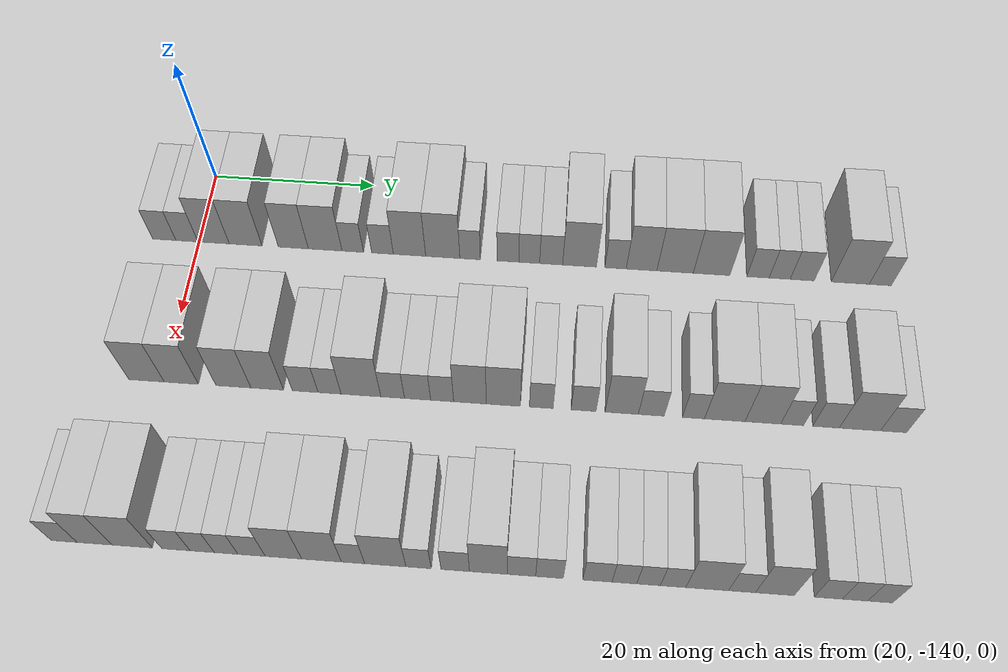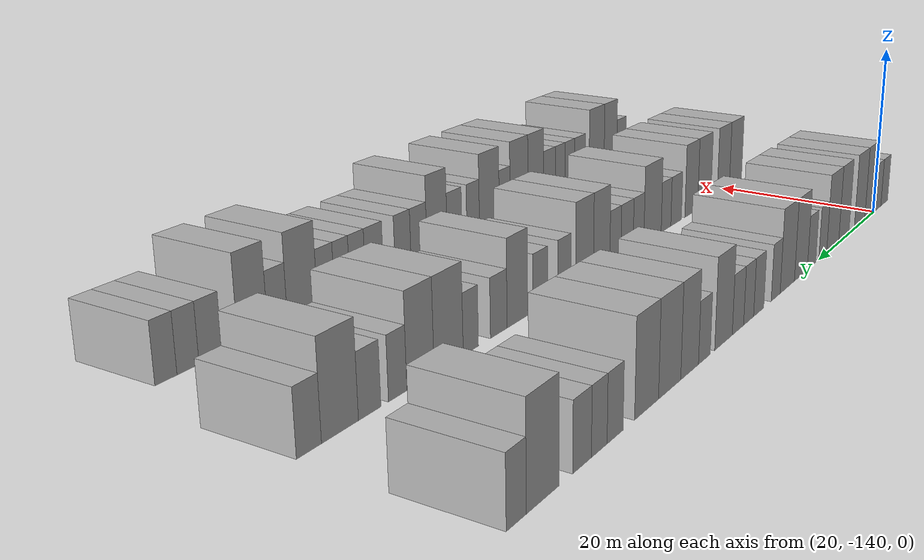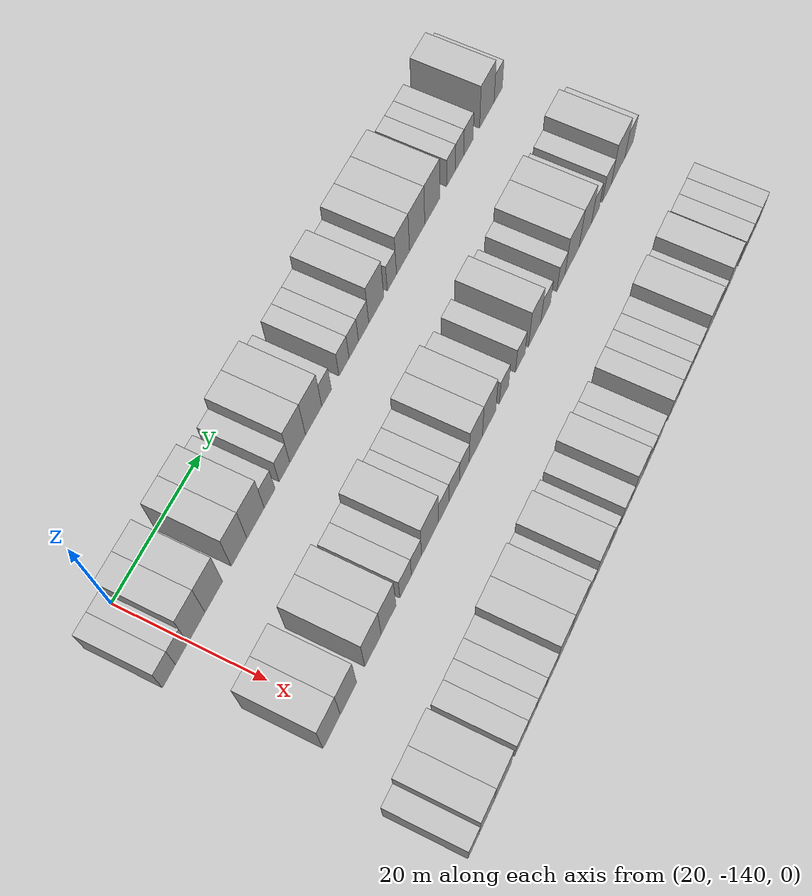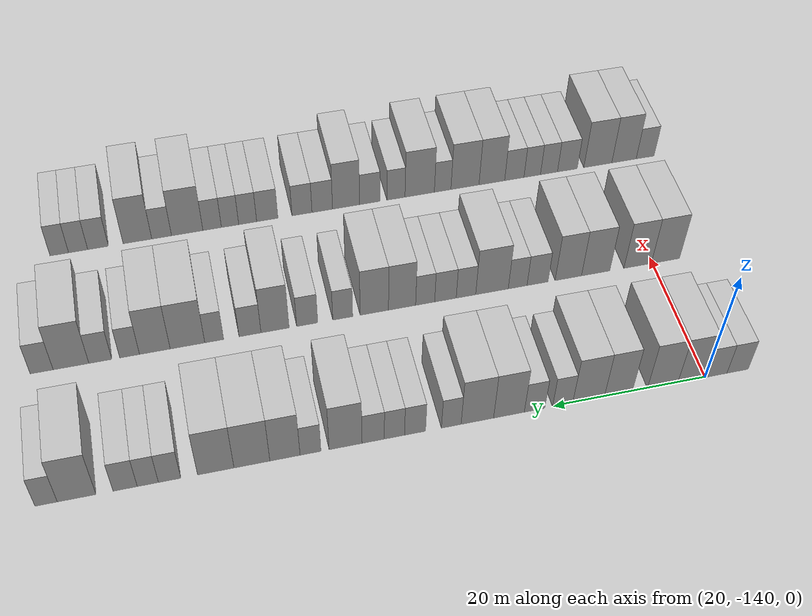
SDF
<sdf version="1.6">
 <world name="default">
  <model name="building_27">
   <static>1</static>
   <pose>25.0000 -144.2960 0 0.000000 0.000000 0.000000</pose>
   <link name="link">
    <pose>0 0 3.00 0 0 0</pose>
    <collision name="collision"><geometry><box><size>10.0000 2.8612 6.0000</size></box></geometry></collision>
    <visual name="visual">
     <cast_shadows>0</cast_shadows>
     <geometry><box><size>10.0000 2.8612 6.0000</size></box></geometry>
     <material>
      <script>
       <uri>model://HANNAS_wall/materials/scripts</uri>
       <uri>model://HANNAS_wall/materials/textures</uri>
       <name>vrc/HANNAS_wall</name>
      </script>
     </material>
    </visual>
   </link>
  </model>
  <model name="building_28">
   <static>1</static>
   <pose>25.0000 -141.5084 0 0.000000 0.000000 0.000000</pose>
   <link name="link">
    <pose>0 0 3.00 0 0 0</pose>
    <collision name="collision"><geometry><box><size>10.0000 2.7138 6.0000</size></box></geometry></collision>
    <visual name="visual">
     <cast_shadows>0</cast_shadows>
     <geometry><box><size>10.0000 2.7138 6.0000</size></box></geometry>
     <material>
      <script>
       <uri>model://HANNAS_wall/materials/scripts</uri>
       <uri>model://HANNAS_wall/materials/textures</uri>
       <name>vrc/HANNAS_wall</name>
      </script>
     </material>
    </visual>
   </link>
  </model>
  <model name="building_29">
   <static>1</static>
   <pose>25.0000 -138.2250 0 0.000000 0.000000 0.000000</pose>
   <link name="link">
    <pose>0 0 4.50 0 0 0</pose>
    <collision name="collision"><geometry><box><size>10.0000 3.8531 9.0000</size></box></geometry></collision>
    <visual name="visual">
     <cast_shadows>0</cast_shadows>
     <geometry><box><size>10.0000 3.8531 9.0000</size></box></geometry>
     <material>
      <script>
       <uri>model://HANNAS_wall/materials/scripts</uri>
       <uri>model://HANNAS_wall/materials/textures</uri>
       <name>vrc/HANNAS_wall</name>
      </script>
     </material>
    </visual>
   </link>
  </model>
  <model name="building_30">
   <static>1</static>
   <pose>25.0000 -134.2872 0 0.000000 0.000000 0.000000</pose>
   <link name="link">
    <pose>0 0 4.50 0 0 0</pose>
    <collision name="collision"><geometry><box><size>10.0000 4.0226 9.0000</size></box></geometry></collision>
    <visual name="visual">
     <cast_shadows>0</cast_shadows>
     <geometry><box><size>10.0000 4.0226 9.0000</size></box></geometry>
     <material>
      <script>
       <uri>model://HANNAS_wall/materials/scripts</uri>
       <uri>model://HANNAS_wall/materials/textures</uri>
       <name>vrc/HANNAS_wall</name>
      </script>
     </material>
    </visual>
   </link>
  </model>
  <model name="building_31">
   <static>1</static>
   <pose>25.0000 -128.4389 0 0.000000 0.000000 0.000000</pose>
   <link name="link">
    <pose>0 0 4.50 0 0 0</pose>
    <collision name="collision"><geometry><box><size>10.0000 3.6739 9.0000</size></box></geometry></collision>
    <visual name="visual">
     <cast_shadows>0</cast_shadows>
     <geometry><box><size>10.0000 3.6739 9.0000</size></box></geometry>
     <material>
      <script>
       <uri>model://HANNAS_wall/materials/scripts</uri>
       <uri>model://HANNAS_wall/materials/textures</uri>
       <name>vrc/HANNAS_wall</name>
      </script>
     </material>
    </visual>
   </link>
  </model>
  <model name="building_32">
   <static>1</static>
   <pose>25.0000 -124.5417 0 0.000000 0.000000 0.000000</pose>
   <link name="link">
    <pose>0 0 4.50 0 0 0</pose>
    <collision name="collision"><geometry><box><size>10.0000 4.1206 9.0000</size></box></geometry></collision>
    <visual name="visual">
     <cast_shadows>0</cast_shadows>
     <geometry><box><size>10.0000 4.1206 9.0000</size></box></geometry>
     <material>
      <script>
       <uri>model://HANNAS_wall/materials/scripts</uri>
       <uri>model://HANNAS_wall/materials/textures</uri>
       <name>vrc/HANNAS_wall</name>
      </script>
     </material>
    </visual>
   </link>
  </model>
  <model name="building_33">
   <static>1</static>
   <pose>25.0000 -121.1774 0 0.000000 0.000000 0.000000</pose>
   <link name="link">
    <pose>0 0 3.00 0 0 0</pose>
    <collision name="collision"><geometry><box><size>10.0000 2.6078 6.0000</size></box></geometry></collision>
    <visual name="visual">
     <cast_shadows>0</cast_shadows>
     <geometry><box><size>10.0000 2.6078 6.0000</size></box></geometry>
     <material>
      <script>
       <uri>model://HANNAS_wall/materials/scripts</uri>
       <uri>model://HANNAS_wall/materials/textures</uri>
       <name>vrc/HANNAS_wall</name>
      </script>
     </material>
    </visual>
   </link>
  </model>
  <model name="building_34">
   <static>1</static>
   <pose>25.0000 -117.5598 0 0.000000 0.000000 0.000000</pose>
   <link name="link">
    <pose>0 0 3.00 0 0 0</pose>
    <collision name="collision"><geometry><box><size>10.0000 2.6275 6.0000</size></box></geometry></collision>
    <visual name="visual">
     <cast_shadows>0</cast_shadows>
     <geometry><box><size>10.0000 2.6275 6.0000</size></box></geometry>
     <material>
      <script>
       <uri>model://HANNAS_wall/materials/scripts</uri>
       <uri>model://HANNAS_wall/materials/textures</uri>
       <name>vrc/HANNAS_wall</name>
      </script>
     </material>
    </visual>
   </link>
  </model>
  <model name="building_35">
   <static>1</static>
   <pose>25.0000 -114.2830 0 0.000000 0.000000 0.000000</pose>
   <link name="link">
    <pose>0 0 4.50 0 0 0</pose>
    <collision name="collision"><geometry><box><size>10.0000 3.9260 9.0000</size></box></geometry></collision>
    <visual name="visual">
     <cast_shadows>0</cast_shadows>
     <geometry><box><size>10.0000 3.9260 9.0000</size></box></geometry>
     <material>
      <script>
       <uri>model://HANNAS_wall/materials/scripts</uri>
       <uri>model://HANNAS_wall/materials/textures</uri>
       <name>vrc/HANNAS_wall</name>
      </script>
     </material>
    </visual>
   </link>
  </model>
  <model name="building_36">
   <static>1</static>
   <pose>25.0000 -110.2550 0 0.000000 0.000000 0.000000</pose>
   <link name="link">
    <pose>0 0 4.50 0 0 0</pose>
    <collision name="collision"><geometry><box><size>10.0000 4.1302 9.0000</size></box></geometry></collision>
    <visual name="visual">
     <cast_shadows>0</cast_shadows>
     <geometry><box><size>10.0000 4.1302 9.0000</size></box></geometry>
     <material>
      <script>
       <uri>model://HANNAS_wall/materials/scripts</uri>
       <uri>model://HANNAS_wall/materials/textures</uri>
       <name>vrc/HANNAS_wall</name>
      </script>
     </material>
    </visual>
   </link>
  </model>
  <model name="building_37">
   <static>1</static>
   <pose>25.0000 -106.9513 0 0.000000 0.000000 0.000000</pose>
   <link name="link">
    <pose>0 0 3.00 0 0 0</pose>
    <collision name="collision"><geometry><box><size>10.0000 2.4772 6.0000</size></box></geometry></collision>
    <visual name="visual">
     <cast_shadows>0</cast_shadows>
     <geometry><box><size>10.0000 2.4772 6.0000</size></box></geometry>
     <material>
      <script>
       <uri>model://HANNAS_wall/materials/scripts</uri>
       <uri>model://HANNAS_wall/materials/textures</uri>
       <name>vrc/HANNAS_wall</name>
      </script>
     </material>
    </visual>
   </link>
  </model>
  <model name="building_38">
   <static>1</static>
   <pose>25.0000 -102.3991 0 0.000000 0.000000 0.000000</pose>
   <link name="link">
    <pose>0 0 3.00 0 0 0</pose>
    <collision name="collision"><geometry><box><size>10.0000 2.6270 6.0000</size></box></geometry></collision>
    <visual name="visual">
     <cast_shadows>0</cast_shadows>
     <geometry><box><size>10.0000 2.6270 6.0000</size></box></geometry>
     <material>
      <script>
       <uri>model://HANNAS_wall/materials/scripts</uri>
       <uri>model://HANNAS_wall/materials/textures</uri>
       <name>vrc/HANNAS_wall</name>
      </script>
     </material>
    </visual>
   </link>
  </model>
  <model name="building_39">
   <static>1</static>
   <pose>25.0000 -99.8276 0 0.000000 0.000000 0.000000</pose>
   <link name="link">
    <pose>0 0 3.00 0 0 0</pose>
    <collision name="collision"><geometry><box><size>10.0000 2.5159 6.0000</size></box></geometry></collision>
    <visual name="visual">
     <cast_shadows>0</cast_shadows>
     <geometry><box><size>10.0000 2.5159 6.0000</size></box></geometry>
     <material>
      <script>
       <uri>model://HANNAS_wall/materials/scripts</uri>
       <uri>model://HANNAS_wall/materials/textures</uri>
       <name>vrc/HANNAS_wall</name>
      </script>
     </material>
    </visual>
   </link>
  </model>
  <model name="building_40">
   <static>1</static>
   <pose>25.0000 -97.1902 0 0.000000 0.000000 0.000000</pose>
   <link name="link">
    <pose>0 0 3.00 0 0 0</pose>
    <collision name="collision"><geometry><box><size>10.0000 2.7589 6.0000</size></box></geometry></collision>
    <visual name="visual">
     <cast_shadows>0</cast_shadows>
     <geometry><box><size>10.0000 2.7589 6.0000</size></box></geometry>
     <material>
      <script>
       <uri>model://HANNAS_wall/materials/scripts</uri>
       <uri>model://HANNAS_wall/materials/textures</uri>
       <name>vrc/HANNAS_wall</name>
      </script>
     </material>
    </visual>
   </link>
  </model>
  <model name="building_41">
   <static>1</static>
   <pose>25.0000 -93.7795 0 0.000000 0.000000 0.000000</pose>
   <link name="link">
    <pose>0 0 4.50 0 0 0</pose>
    <collision name="collision"><geometry><box><size>10.0000 4.0625 9.0000</size></box></geometry></collision>
    <visual name="visual">
     <cast_shadows>0</cast_shadows>
     <geometry><box><size>10.0000 4.0625 9.0000</size></box></geometry>
     <material>
      <script>
       <uri>model://HANNAS_wall/materials/scripts</uri>
       <uri>model://HANNAS_wall/materials/textures</uri>
       <name>vrc/HANNAS_wall</name>
      </script>
     </material>
    </visual>
   </link>
  </model>
  <model name="building_42">
   <static>1</static>
   <pose>25.0000 -89.4730 0 0.000000 0.000000 0.000000</pose>
   <link name="link">
    <pose>0 0 3.00 0 0 0</pose>
    <collision name="collision"><geometry><box><size>10.0000 2.5506 6.0000</size></box></geometry></collision>
    <visual name="visual">
     <cast_shadows>0</cast_shadows>
     <geometry><box><size>10.0000 2.5506 6.0000</size></box></geometry>
     <material>
      <script>
       <uri>model://HANNAS_wall/materials/scripts</uri>
       <uri>model://HANNAS_wall/materials/textures</uri>
       <name>vrc/HANNAS_wall</name>
      </script>
     </material>
    </visual>
   </link>
  </model>
  <model name="building_43">
   <static>1</static>
   <pose>25.0000 -86.3629 0 0.000000 0.000000 0.000000</pose>
   <link name="link">
    <pose>0 0 4.50 0 0 0</pose>
    <collision name="collision"><geometry><box><size>10.0000 3.6694 9.0000</size></box></geometry></collision>
    <visual name="visual">
     <cast_shadows>0</cast_shadows>
     <geometry><box><size>10.0000 3.6694 9.0000</size></box></geometry>
     <material>
      <script>
       <uri>model://HANNAS_wall/materials/scripts</uri>
       <uri>model://HANNAS_wall/materials/textures</uri>
       <name>vrc/HANNAS_wall</name>
      </script>
     </material>
    </visual>
   </link>
  </model>
  <model name="building_44">
   <static>1</static>
   <pose>25.0000 -82.3609 0 0.000000 0.000000 0.000000</pose>
   <link name="link">
    <pose>0 0 4.50 0 0 0</pose>
    <collision name="collision"><geometry><box><size>10.0000 4.3346 9.0000</size></box></geometry></collision>
    <visual name="visual">
     <cast_shadows>0</cast_shadows>
     <geometry><box><size>10.0000 4.3346 9.0000</size></box></geometry>
     <material>
      <script>
       <uri>model://HANNAS_wall/materials/scripts</uri>
       <uri>model://HANNAS_wall/materials/textures</uri>
       <name>vrc/HANNAS_wall</name>
      </script>
     </material>
    </visual>
   </link>
  </model>
  <model name="building_45">
   <static>1</static>
   <pose>25.0000 -78.0160 0 0.000000 0.000000 0.000000</pose>
   <link name="link">
    <pose>0 0 4.50 0 0 0</pose>
    <collision name="collision"><geometry><box><size>10.0000 4.3552 9.0000</size></box></geometry></collision>
    <visual name="visual">
     <cast_shadows>0</cast_shadows>
     <geometry><box><size>10.0000 4.3552 9.0000</size></box></geometry>
     <material>
      <script>
       <uri>model://HANNAS_wall/materials/scripts</uri>
       <uri>model://HANNAS_wall/materials/textures</uri>
       <name>vrc/HANNAS_wall</name>
      </script>
     </material>
    </visual>
   </link>
  </model>
  <model name="building_46">
   <static>1</static>
   <pose>25.0000 -72.5112 0 0.000000 0.000000 0.000000</pose>
   <link name="link">
    <pose>0 0 3.00 0 0 0</pose>
    <collision name="collision"><geometry><box><size>10.0000 2.6545 6.0000</size></box></geometry></collision>
    <visual name="visual">
     <cast_shadows>0</cast_shadows>
     <geometry><box><size>10.0000 2.6545 6.0000</size></box></geometry>
     <material>
      <script>
       <uri>model://HANNAS_wall/materials/scripts</uri>
       <uri>model://HANNAS_wall/materials/textures</uri>
       <name>vrc/HANNAS_wall</name>
      </script>
     </material>
    </visual>
   </link>
  </model>
  <model name="building_47">
   <static>1</static>
   <pose>25.0000 -69.9374 0 0.000000 0.000000 0.000000</pose>
   <link name="link">
    <pose>0 0 3.00 0 0 0</pose>
    <collision name="collision"><geometry><box><size>10.0000 2.4931 6.0000</size></box></geometry></collision>
    <visual name="visual">
     <cast_shadows>0</cast_shadows>
     <geometry><box><size>10.0000 2.4931 6.0000</size></box></geometry>
     <material>
      <script>
       <uri>model://HANNAS_wall/materials/scripts</uri>
       <uri>model://HANNAS_wall/materials/textures</uri>
       <name>vrc/HANNAS_wall</name>
      </script>
     </material>
    </visual>
   </link>
  </model>
  <model name="building_48">
   <static>1</static>
   <pose>25.0000 -67.2737 0 0.000000 0.000000 0.000000</pose>
   <link name="link">
    <pose>0 0 3.00 0 0 0</pose>
    <collision name="collision"><geometry><box><size>10.0000 2.8341 6.0000</size></box></geometry></collision>
    <visual name="visual">
     <cast_shadows>0</cast_shadows>
     <geometry><box><size>10.0000 2.8341 6.0000</size></box></geometry>
     <material>
      <script>
       <uri>model://HANNAS_wall/materials/scripts</uri>
       <uri>model://HANNAS_wall/materials/textures</uri>
       <name>vrc/HANNAS_wall</name>
      </script>
     </material>
    </visual>
   </link>
  </model>
  <model name="building_49">
   <static>1</static>
   <pose>25.0000 -61.6095 0 0.000000 0.000000 0.000000</pose>
   <link name="link">
    <pose>0 0 4.50 0 0 0</pose>
    <collision name="collision"><geometry><box><size>10.0000 4.4944 9.0000</size></box></geometry></collision>
    <visual name="visual">
     <cast_shadows>0</cast_shadows>
     <geometry><box><size>10.0000 4.4944 9.0000</size></box></geometry>
     <material>
      <script>
       <uri>model://HANNAS_wall/materials/scripts</uri>
       <uri>model://HANNAS_wall/materials/textures</uri>
       <name>vrc/HANNAS_wall</name>
      </script>
     </material>
    </visual>
   </link>
  </model>
  <model name="building_50">
   <static>1</static>
   <pose>25.0000 -58.0694 0 0.000000 0.000000 0.000000</pose>
   <link name="link">
    <pose>0 0 3.00 0 0 0</pose>
    <collision name="collision"><geometry><box><size>10.0000 2.5858 6.0000</size></box></geometry></collision>
    <visual name="visual">
     <cast_shadows>0</cast_shadows>
     <geometry><box><size>10.0000 2.5858 6.0000</size></box></geometry>
     <material>
      <script>
       <uri>model://HANNAS_wall/materials/scripts</uri>
       <uri>model://HANNAS_wall/materials/textures</uri>
       <name>vrc/HANNAS_wall</name>
      </script>
     </material>
    </visual>
   </link>
  </model>
  <model name="building_145">
   <static>1</static>
   <pose>44.0000 -141.8505 0 0.000000 0.000000 0.000000</pose>
   <link name="link">
    <pose>0 0 4.50 0 0 0</pose>
    <collision name="collision"><geometry><box><size>10.0000 4.0419 9.0000</size></box></geometry></collision>
    <visual name="visual">
     <cast_shadows>0</cast_shadows>
     <geometry><box><size>10.0000 4.0419 9.0000</size></box></geometry>
     <material>
      <script>
       <uri>model://HANNAS_wall/materials/scripts</uri>
       <uri>model://HANNAS_wall/materials/textures</uri>
       <name>vrc/HANNAS_wall</name>
      </script>
     </material>
    </visual>
   </link>
  </model>
  <model name="building_146">
   <static>1</static>
   <pose>44.0000 -137.8830 0 0.000000 0.000000 0.000000</pose>
   <link name="link">
    <pose>0 0 4.50 0 0 0</pose>
    <collision name="collision"><geometry><box><size>10.0000 3.8932 9.0000</size></box></geometry></collision>
    <visual name="visual">
     <cast_shadows>0</cast_shadows>
     <geometry><box><size>10.0000 3.8932 9.0000</size></box></geometry>
     <material>
      <script>
       <uri>model://HANNAS_wall/materials/scripts</uri>
       <uri>model://HANNAS_wall/materials/textures</uri>
       <name>vrc/HANNAS_wall</name>
      </script>
     </material>
    </visual>
   </link>
  </model>
  <model name="building_147">
   <static>1</static>
   <pose>44.0000 -131.9435 0 0.000000 0.000000 0.000000</pose>
   <link name="link">
    <pose>0 0 4.50 0 0 0</pose>
    <collision name="collision"><geometry><box><size>10.0000 3.9858 9.0000</size></box></geometry></collision>
    <visual name="visual">
     <cast_shadows>0</cast_shadows>
     <geometry><box><size>10.0000 3.9858 9.0000</size></box></geometry>
     <material>
      <script>
       <uri>model://HANNAS_wall/materials/scripts</uri>
       <uri>model://HANNAS_wall/materials/textures</uri>
       <name>vrc/HANNAS_wall</name>
      </script>
     </material>
    </visual>
   </link>
  </model>
  <model name="building_148">
   <static>1</static>
   <pose>44.0000 -128.1003 0 0.000000 0.000000 0.000000</pose>
   <link name="link">
    <pose>0 0 4.50 0 0 0</pose>
    <collision name="collision"><geometry><box><size>10.0000 3.7007 9.0000</size></box></geometry></collision>
    <visual name="visual">
     <cast_shadows>0</cast_shadows>
     <geometry><box><size>10.0000 3.7007 9.0000</size></box></geometry>
     <material>
      <script>
       <uri>model://HANNAS_wall/materials/scripts</uri>
       <uri>model://HANNAS_wall/materials/textures</uri>
       <name>vrc/HANNAS_wall</name>
      </script>
     </material>
    </visual>
   </link>
  </model>
  <model name="building_149">
   <static>1</static>
   <pose>44.0000 -123.7955 0 0.000000 0.000000 0.000000</pose>
   <link name="link">
    <pose>0 0 3.00 0 0 0</pose>
    <collision name="collision"><geometry><box><size>10.0000 2.9089 6.0000</size></box></geometry></collision>
    <visual name="visual">
     <cast_shadows>0</cast_shadows>
     <geometry><box><size>10.0000 2.9089 6.0000</size></box></geometry>
     <material>
      <script>
       <uri>model://HANNAS_wall/materials/scripts</uri>
       <uri>model://HANNAS_wall/materials/textures</uri>
       <name>vrc/HANNAS_wall</name>
      </script>
     </material>
    </visual>
   </link>
  </model>
  <model name="building_150">
   <static>1</static>
   <pose>44.0000 -121.0415 0 0.000000 0.000000 0.000000</pose>
   <link name="link">
    <pose>0 0 3.00 0 0 0</pose>
    <collision name="collision"><geometry><box><size>10.0000 2.5991 6.0000</size></box></geometry></collision>
    <visual name="visual">
     <cast_shadows>0</cast_shadows>
     <geometry><box><size>10.0000 2.5991 6.0000</size></box></geometry>
     <material>
      <script>
       <uri>model://HANNAS_wall/materials/scripts</uri>
       <uri>model://HANNAS_wall/materials/textures</uri>
       <name>vrc/HANNAS_wall</name>
      </script>
     </material>
    </visual>
   </link>
  </model>
  <model name="building_151">
   <static>1</static>
   <pose>44.0000 -117.4998 0 0.000000 0.000000 0.000000</pose>
   <link name="link">
    <pose>0 0 4.50 0 0 0</pose>
    <collision name="collision"><geometry><box><size>10.0000 4.4843 9.0000</size></box></geometry></collision>
    <visual name="visual">
     <cast_shadows>0</cast_shadows>
     <geometry><box><size>10.0000 4.4843 9.0000</size></box></geometry>
     <material>
      <script>
       <uri>model://HANNAS_wall/materials/scripts</uri>
       <uri>model://HANNAS_wall/materials/textures</uri>
       <name>vrc/HANNAS_wall</name>
      </script>
     </material>
    </visual>
   </link>
  </model>
  <model name="building_152">
   <static>1</static>
   <pose>44.0000 -113.9255 0 0.000000 0.000000 0.000000</pose>
   <link name="link">
    <pose>0 0 3.00 0 0 0</pose>
    <collision name="collision"><geometry><box><size>10.0000 2.6643 6.0000</size></box></geometry></collision>
    <visual name="visual">
     <cast_shadows>0</cast_shadows>
     <geometry><box><size>10.0000 2.6643 6.0000</size></box></geometry>
     <material>
      <script>
       <uri>model://HANNAS_wall/materials/scripts</uri>
       <uri>model://HANNAS_wall/materials/textures</uri>
       <name>vrc/HANNAS_wall</name>
      </script>
     </material>
    </visual>
   </link>
  </model>
  <model name="building_153">
   <static>1</static>
   <pose>44.0000 -111.1260 0 0.000000 0.000000 0.000000</pose>
   <link name="link">
    <pose>0 0 3.00 0 0 0</pose>
    <collision name="collision"><geometry><box><size>10.0000 2.9346 6.0000</size></box></geometry></collision>
    <visual name="visual">
     <cast_shadows>0</cast_shadows>
     <geometry><box><size>10.0000 2.9346 6.0000</size></box></geometry>
     <material>
      <script>
       <uri>model://HANNAS_wall/materials/scripts</uri>
       <uri>model://HANNAS_wall/materials/textures</uri>
       <name>vrc/HANNAS_wall</name>
      </script>
     </material>
    </visual>
   </link>
  </model>
  <model name="building_154">
   <static>1</static>
   <pose>44.0000 -108.3682 0 0.000000 0.000000 0.000000</pose>
   <link name="link">
    <pose>0 0 3.00 0 0 0</pose>
    <collision name="collision"><geometry><box><size>10.0000 2.5810 6.0000</size></box></geometry></collision>
    <visual name="visual">
     <cast_shadows>0</cast_shadows>
     <geometry><box><size>10.0000 2.5810 6.0000</size></box></geometry>
     <material>
      <script>
       <uri>model://HANNAS_wall/materials/scripts</uri>
       <uri>model://HANNAS_wall/materials/textures</uri>
       <name>vrc/HANNAS_wall</name>
      </script>
     </material>
    </visual>
   </link>
  </model>
  <model name="building_155">
   <static>1</static>
   <pose>44.0000 -105.2479 0 0.000000 0.000000 0.000000</pose>
   <link name="link">
    <pose>0 0 4.50 0 0 0</pose>
    <collision name="collision"><geometry><box><size>10.0000 3.6594 9.0000</size></box></geometry></collision>
    <visual name="visual">
     <cast_shadows>0</cast_shadows>
     <geometry><box><size>10.0000 3.6594 9.0000</size></box></geometry>
     <material>
      <script>
       <uri>model://HANNAS_wall/materials/scripts</uri>
       <uri>model://HANNAS_wall/materials/textures</uri>
       <name>vrc/HANNAS_wall</name>
      </script>
     </material>
    </visual>
   </link>
  </model>
  <model name="building_156">
   <static>1</static>
   <pose>44.0000 -101.5201 0 0.000000 0.000000 0.000000</pose>
   <link name="link">
    <pose>0 0 4.50 0 0 0</pose>
    <collision name="collision"><geometry><box><size>10.0000 3.7964 9.0000</size></box></geometry></collision>
    <visual name="visual">
     <cast_shadows>0</cast_shadows>
     <geometry><box><size>10.0000 3.7964 9.0000</size></box></geometry>
     <material>
      <script>
       <uri>model://HANNAS_wall/materials/scripts</uri>
       <uri>model://HANNAS_wall/materials/textures</uri>
       <name>vrc/HANNAS_wall</name>
      </script>
     </material>
    </visual>
   </link>
  </model>
  <model name="building_157">
   <static>1</static>
   <pose>44.0000 -97.3003 0 0.000000 0.000000 0.000000</pose>
   <link name="link">
    <pose>0 0 3.00 0 0 0</pose>
    <collision name="collision"><geometry><box><size>10.0000 2.6431 6.0000</size></box></geometry></collision>
    <visual name="visual">
     <cast_shadows>0</cast_shadows>
     <geometry><box><size>10.0000 2.6431 6.0000</size></box></geometry>
     <material>
      <script>
       <uri>model://HANNAS_wall/materials/scripts</uri>
       <uri>model://HANNAS_wall/materials/textures</uri>
       <name>vrc/HANNAS_wall</name>
      </script>
     </material>
    </visual>
   </link>
  </model>
  <model name="building_158">
   <static>1</static>
   <pose>44.0000 -92.5928 0 0.000000 0.000000 0.000000</pose>
   <link name="link">
    <pose>0 0 3.00 0 0 0</pose>
    <collision name="collision"><geometry><box><size>10.0000 2.7718 6.0000</size></box></geometry></collision>
    <visual name="visual">
     <cast_shadows>0</cast_shadows>
     <geometry><box><size>10.0000 2.7718 6.0000</size></box></geometry>
     <material>
      <script>
       <uri>model://HANNAS_wall/materials/scripts</uri>
       <uri>model://HANNAS_wall/materials/textures</uri>
       <name>vrc/HANNAS_wall</name>
      </script>
     </material>
    </visual>
   </link>
  </model>
  <model name="building_159">
   <static>1</static>
   <pose>44.0000 -88.3654 0 0.000000 0.000000 0.000000</pose>
   <link name="link">
    <pose>0 0 4.50 0 0 0</pose>
    <collision name="collision"><geometry><box><size>10.0000 3.6829 9.0000</size></box></geometry></collision>
    <visual name="visual">
     <cast_shadows>0</cast_shadows>
     <geometry><box><size>10.0000 3.6829 9.0000</size></box></geometry>
     <material>
      <script>
       <uri>model://HANNAS_wall/materials/scripts</uri>
       <uri>model://HANNAS_wall/materials/textures</uri>
       <name>vrc/HANNAS_wall</name>
      </script>
     </material>
    </visual>
   </link>
  </model>
  <model name="building_160">
   <static>1</static>
   <pose>44.0000 -85.0922 0 0.000000 0.000000 0.000000</pose>
   <link name="link">
    <pose>0 0 3.00 0 0 0</pose>
    <collision name="collision"><geometry><box><size>10.0000 2.8635 6.0000</size></box></geometry></collision>
    <visual name="visual">
     <cast_shadows>0</cast_shadows>
     <geometry><box><size>10.0000 2.8635 6.0000</size></box></geometry>
     <material>
      <script>
       <uri>model://HANNAS_wall/materials/scripts</uri>
       <uri>model://HANNAS_wall/materials/textures</uri>
       <name>vrc/HANNAS_wall</name>
      </script>
     </material>
    </visual>
   </link>
  </model>
  <model name="building_161">
   <static>1</static>
   <pose>44.0000 -80.4399 0 0.000000 0.000000 0.000000</pose>
   <link name="link">
    <pose>0 0 3.00 0 0 0</pose>
    <collision name="collision"><geometry><box><size>10.0000 2.4412 6.0000</size></box></geometry></collision>
    <visual name="visual">
     <cast_shadows>0</cast_shadows>
     <geometry><box><size>10.0000 2.4412 6.0000</size></box></geometry>
     <material>
      <script>
       <uri>model://HANNAS_wall/materials/scripts</uri>
       <uri>model://HANNAS_wall/materials/textures</uri>
       <name>vrc/HANNAS_wall</name>
      </script>
     </material>
    </visual>
   </link>
  </model>
  <model name="building_162">
   <static>1</static>
   <pose>44.0000 -76.9955 0 0.000000 0.000000 0.000000</pose>
   <link name="link">
    <pose>0 0 4.50 0 0 0</pose>
    <collision name="collision"><geometry><box><size>10.0000 4.4476 9.0000</size></box></geometry></collision>
    <visual name="visual">
     <cast_shadows>0</cast_shadows>
     <geometry><box><size>10.0000 4.4476 9.0000</size></box></geometry>
     <material>
      <script>
       <uri>model://HANNAS_wall/materials/scripts</uri>
       <uri>model://HANNAS_wall/materials/textures</uri>
       <name>vrc/HANNAS_wall</name>
      </script>
     </material>
    </visual>
   </link>
  </model>
  <model name="building_163">
   <static>1</static>
   <pose>44.0000 -72.8133 0 0.000000 0.000000 0.000000</pose>
   <link name="link">
    <pose>0 0 4.50 0 0 0</pose>
    <collision name="collision"><geometry><box><size>10.0000 3.9168 9.0000</size></box></geometry></collision>
    <visual name="visual">
     <cast_shadows>0</cast_shadows>
     <geometry><box><size>10.0000 3.9168 9.0000</size></box></geometry>
     <material>
      <script>
       <uri>model://HANNAS_wall/materials/scripts</uri>
       <uri>model://HANNAS_wall/materials/textures</uri>
       <name>vrc/HANNAS_wall</name>
      </script>
     </material>
    </visual>
   </link>
  </model>
  <model name="building_164">
   <static>1</static>
   <pose>44.0000 -69.5964 0 0.000000 0.000000 0.000000</pose>
   <link name="link">
    <pose>0 0 3.00 0 0 0</pose>
    <collision name="collision"><geometry><box><size>10.0000 2.5169 6.0000</size></box></geometry></collision>
    <visual name="visual">
     <cast_shadows>0</cast_shadows>
     <geometry><box><size>10.0000 2.5169 6.0000</size></box></geometry>
     <material>
      <script>
       <uri>model://HANNAS_wall/materials/scripts</uri>
       <uri>model://HANNAS_wall/materials/textures</uri>
       <name>vrc/HANNAS_wall</name>
      </script>
     </material>
    </visual>
   </link>
  </model>
  <model name="building_165">
   <static>1</static>
   <pose>44.0000 -65.8906 0 0.000000 0.000000 0.000000</pose>
   <link name="link">
    <pose>0 0 3.00 0 0 0</pose>
    <collision name="collision"><geometry><box><size>10.0000 2.8948 6.0000</size></box></geometry></collision>
    <visual name="visual">
     <cast_shadows>0</cast_shadows>
     <geometry><box><size>10.0000 2.8948 6.0000</size></box></geometry>
     <material>
      <script>
       <uri>model://HANNAS_wall/materials/scripts</uri>
       <uri>model://HANNAS_wall/materials/textures</uri>
       <name>vrc/HANNAS_wall</name>
      </script>
     </material>
    </visual>
   </link>
  </model>
  <model name="building_166">
   <static>1</static>
   <pose>44.0000 -62.2028 0 0.000000 0.000000 0.000000</pose>
   <link name="link">
    <pose>0 0 4.50 0 0 0</pose>
    <collision name="collision"><geometry><box><size>10.0000 4.4808 9.0000</size></box></geometry></collision>
    <visual name="visual">
     <cast_shadows>0</cast_shadows>
     <geometry><box><size>10.0000 4.4808 9.0000</size></box></geometry>
     <material>
      <script>
       <uri>model://HANNAS_wall/materials/scripts</uri>
       <uri>model://HANNAS_wall/materials/textures</uri>
       <name>vrc/HANNAS_wall</name>
      </script>
     </material>
    </visual>
   </link>
  </model>
  <model name="building_167">
   <static>1</static>
   <pose>44.0000 -58.5306 0 0.000000 0.000000 0.000000</pose>
   <link name="link">
    <pose>0 0 3.00 0 0 0</pose>
    <collision name="collision"><geometry><box><size>10.0000 2.8638 6.0000</size></box></geometry></collision>
    <visual name="visual">
     <cast_shadows>0</cast_shadows>
     <geometry><box><size>10.0000 2.8638 6.0000</size></box></geometry>
     <material>
      <script>
       <uri>model://HANNAS_wall/materials/scripts</uri>
       <uri>model://HANNAS_wall/materials/textures</uri>
       <name>vrc/HANNAS_wall</name>
      </script>
     </material>
    </visual>
   </link>
  </model>
  <model name="building_265">
   <static>1</static>
   <pose>63.0000 -145.9398 0 0.000000 0.000000 0.000000</pose>
   <link name="link">
    <pose>0 0 3.00 0 0 0</pose>
    <collision name="collision"><geometry><box><size>10.0000 2.7453 6.0000</size></box></geometry></collision>
    <visual name="visual">
     <cast_shadows>0</cast_shadows>
     <geometry><box><size>10.0000 2.7453 6.0000</size></box></geometry>
     <material>
      <script>
       <uri>model://HANNAS_wall/materials/scripts</uri>
       <uri>model://HANNAS_wall/materials/textures</uri>
       <name>vrc/HANNAS_wall</name>
      </script>
     </material>
    </visual>
   </link>
  </model>
  <model name="building_266">
   <static>1</static>
   <pose>63.0000 -142.7098 0 0.000000 0.000000 0.000000</pose>
   <link name="link">
    <pose>0 0 4.50 0 0 0</pose>
    <collision name="collision"><geometry><box><size>10.0000 3.7147 9.0000</size></box></geometry></collision>
    <visual name="visual">
     <cast_shadows>0</cast_shadows>
     <geometry><box><size>10.0000 3.7147 9.0000</size></box></geometry>
     <material>
      <script>
       <uri>model://HANNAS_wall/materials/scripts</uri>
       <uri>model://HANNAS_wall/materials/textures</uri>
       <name>vrc/HANNAS_wall</name>
      </script>
     </material>
    </visual>
   </link>
  </model>
  <model name="building_267">
   <static>1</static>
   <pose>63.0000 -138.7336 0 0.000000 0.000000 0.000000</pose>
   <link name="link">
    <pose>0 0 4.50 0 0 0</pose>
    <collision name="collision"><geometry><box><size>10.0000 4.2377 9.0000</size></box></geometry></collision>
    <visual name="visual">
     <cast_shadows>0</cast_shadows>
     <geometry><box><size>10.0000 4.2377 9.0000</size></box></geometry>
     <material>
      <script>
       <uri>model://HANNAS_wall/materials/scripts</uri>
       <uri>model://HANNAS_wall/materials/textures</uri>
       <name>vrc/HANNAS_wall</name>
      </script>
     </material>
    </visual>
   </link>
  </model>
  <model name="building_268">
   <static>1</static>
   <pose>63.0000 -134.1266 0 0.000000 0.000000 0.000000</pose>
   <link name="link">
    <pose>0 0 3.00 0 0 0</pose>
    <collision name="collision"><geometry><box><size>10.0000 2.9763 6.0000</size></box></geometry></collision>
    <visual name="visual">
     <cast_shadows>0</cast_shadows>
     <geometry><box><size>10.0000 2.9763 6.0000</size></box></geometry>
     <material>
      <script>
       <uri>model://HANNAS_wall/materials/scripts</uri>
       <uri>model://HANNAS_wall/materials/textures</uri>
       <name>vrc/HANNAS_wall</name>
      </script>
     </material>
    </visual>
   </link>
  </model>
  <model name="building_269">
   <static>1</static>
   <pose>63.0000 -131.3655 0 0.000000 0.000000 0.000000</pose>
   <link name="link">
    <pose>0 0 3.00 0 0 0</pose>
    <collision name="collision"><geometry><box><size>10.0000 2.5458 6.0000</size></box></geometry></collision>
    <visual name="visual">
     <cast_shadows>0</cast_shadows>
     <geometry><box><size>10.0000 2.5458 6.0000</size></box></geometry>
     <material>
      <script>
       <uri>model://HANNAS_wall/materials/scripts</uri>
       <uri>model://HANNAS_wall/materials/textures</uri>
       <name>vrc/HANNAS_wall</name>
      </script>
     </material>
    </visual>
   </link>
  </model>
  <model name="building_270">
   <static>1</static>
   <pose>63.0000 -128.8626 0 0.000000 0.000000 0.000000</pose>
   <link name="link">
    <pose>0 0 3.00 0 0 0</pose>
    <collision name="collision"><geometry><box><size>10.0000 2.4602 6.0000</size></box></geometry></collision>
    <visual name="visual">
     <cast_shadows>0</cast_shadows>
     <geometry><box><size>10.0000 2.4602 6.0000</size></box></geometry>
     <material>
      <script>
       <uri>model://HANNAS_wall/materials/scripts</uri>
       <uri>model://HANNAS_wall/materials/textures</uri>
       <name>vrc/HANNAS_wall</name>
      </script>
     </material>
    </visual>
   </link>
  </model>
  <model name="building_271">
   <static>1</static>
   <pose>63.0000 -126.1966 0 0.000000 0.000000 0.000000</pose>
   <link name="link">
    <pose>0 0 3.00 0 0 0</pose>
    <collision name="collision"><geometry><box><size>10.0000 2.8718 6.0000</size></box></geometry></collision>
    <visual name="visual">
     <cast_shadows>0</cast_shadows>
     <geometry><box><size>10.0000 2.8718 6.0000</size></box></geometry>
     <material>
      <script>
       <uri>model://HANNAS_wall/materials/scripts</uri>
       <uri>model://HANNAS_wall/materials/textures</uri>
       <name>vrc/HANNAS_wall</name>
      </script>
     </material>
    </visual>
   </link>
  </model>
  <model name="building_272">
   <static>1</static>
   <pose>63.0000 -122.8618 0 0.000000 0.000000 0.000000</pose>
   <link name="link">
    <pose>0 0 4.50 0 0 0</pose>
    <collision name="collision"><geometry><box><size>10.0000 3.7977 9.0000</size></box></geometry></collision>
    <visual name="visual">
     <cast_shadows>0</cast_shadows>
     <geometry><box><size>10.0000 3.7977 9.0000</size></box></geometry>
     <material>
      <script>
       <uri>model://HANNAS_wall/materials/scripts</uri>
       <uri>model://HANNAS_wall/materials/textures</uri>
       <name>vrc/HANNAS_wall</name>
      </script>
     </material>
    </visual>
   </link>
  </model>
  <model name="building_273">
   <static>1</static>
   <pose>63.0000 -118.8982 0 0.000000 0.000000 0.000000</pose>
   <link name="link">
    <pose>0 0 4.50 0 0 0</pose>
    <collision name="collision"><geometry><box><size>10.0000 4.1294 9.0000</size></box></geometry></collision>
    <visual name="visual">
     <cast_shadows>0</cast_shadows>
     <geometry><box><size>10.0000 4.1294 9.0000</size></box></geometry>
     <material>
      <script>
       <uri>model://HANNAS_wall/materials/scripts</uri>
       <uri>model://HANNAS_wall/materials/textures</uri>
       <name>vrc/HANNAS_wall</name>
      </script>
     </material>
    </visual>
   </link>
  </model>
  <model name="building_274">
   <static>1</static>
   <pose>63.0000 -115.6225 0 0.000000 0.000000 0.000000</pose>
   <link name="link">
    <pose>0 0 3.00 0 0 0</pose>
    <collision name="collision"><geometry><box><size>10.0000 2.4221 6.0000</size></box></geometry></collision>
    <visual name="visual">
     <cast_shadows>0</cast_shadows>
     <geometry><box><size>10.0000 2.4221 6.0000</size></box></geometry>
     <material>
      <script>
       <uri>model://HANNAS_wall/materials/scripts</uri>
       <uri>model://HANNAS_wall/materials/textures</uri>
       <name>vrc/HANNAS_wall</name>
      </script>
     </material>
    </visual>
   </link>
  </model>
  <model name="building_275">
   <static>1</static>
   <pose>63.0000 -112.2739 0 0.000000 0.000000 0.000000</pose>
   <link name="link">
    <pose>0 0 4.50 0 0 0</pose>
    <collision name="collision"><geometry><box><size>10.0000 4.2752 9.0000</size></box></geometry></collision>
    <visual name="visual">
     <cast_shadows>0</cast_shadows>
     <geometry><box><size>10.0000 4.2752 9.0000</size></box></geometry>
     <material>
      <script>
       <uri>model://HANNAS_wall/materials/scripts</uri>
       <uri>model://HANNAS_wall/materials/textures</uri>
       <name>vrc/HANNAS_wall</name>
      </script>
     </material>
    </visual>
   </link>
  </model>
  <model name="building_276">
   <static>1</static>
   <pose>63.0000 -108.8297 0 0.000000 0.000000 0.000000</pose>
   <link name="link">
    <pose>0 0 3.00 0 0 0</pose>
    <collision name="collision"><geometry><box><size>10.0000 2.6131 6.0000</size></box></geometry></collision>
    <visual name="visual">
     <cast_shadows>0</cast_shadows>
     <geometry><box><size>10.0000 2.6131 6.0000</size></box></geometry>
     <material>
      <script>
       <uri>model://HANNAS_wall/materials/scripts</uri>
       <uri>model://HANNAS_wall/materials/textures</uri>
       <name>vrc/HANNAS_wall</name>
      </script>
     </material>
    </visual>
   </link>
  </model>
  <model name="building_277">
   <static>1</static>
   <pose>63.0000 -105.0576 0 0.000000 0.000000 0.000000</pose>
   <link name="link">
    <pose>0 0 3.00 0 0 0</pose>
    <collision name="collision"><geometry><box><size>10.0000 2.9311 6.0000</size></box></geometry></collision>
    <visual name="visual">
     <cast_shadows>0</cast_shadows>
     <geometry><box><size>10.0000 2.9311 6.0000</size></box></geometry>
     <material>
      <script>
       <uri>model://HANNAS_wall/materials/scripts</uri>
       <uri>model://HANNAS_wall/materials/textures</uri>
       <name>vrc/HANNAS_wall</name>
      </script>
     </material>
    </visual>
   </link>
  </model>
  <model name="building_278">
   <static>1</static>
   <pose>63.0000 -101.6571 0 0.000000 0.000000 0.000000</pose>
   <link name="link">
    <pose>0 0 4.50 0 0 0</pose>
    <collision name="collision"><geometry><box><size>10.0000 3.8701 9.0000</size></box></geometry></collision>
    <visual name="visual">
     <cast_shadows>0</cast_shadows>
     <geometry><box><size>10.0000 3.8701 9.0000</size></box></geometry>
     <material>
      <script>
       <uri>model://HANNAS_wall/materials/scripts</uri>
       <uri>model://HANNAS_wall/materials/textures</uri>
       <name>vrc/HANNAS_wall</name>
      </script>
     </material>
    </visual>
   </link>
  </model>
  <model name="building_279">
   <static>1</static>
   <pose>63.0000 -98.2583 0 0.000000 0.000000 0.000000</pose>
   <link name="link">
    <pose>0 0 3.00 0 0 0</pose>
    <collision name="collision"><geometry><box><size>10.0000 2.9276 6.0000</size></box></geometry></collision>
    <visual name="visual">
     <cast_shadows>0</cast_shadows>
     <geometry><box><size>10.0000 2.9276 6.0000</size></box></geometry>
     <material>
      <script>
       <uri>model://HANNAS_wall/materials/scripts</uri>
       <uri>model://HANNAS_wall/materials/textures</uri>
       <name>vrc/HANNAS_wall</name>
      </script>
     </material>
    </visual>
   </link>
  </model>
  <model name="building_280">
   <static>1</static>
   <pose>63.0000 -95.3807 0 0.000000 0.000000 0.000000</pose>
   <link name="link">
    <pose>0 0 3.00 0 0 0</pose>
    <collision name="collision"><geometry><box><size>10.0000 2.8275 6.0000</size></box></geometry></collision>
    <visual name="visual">
     <cast_shadows>0</cast_shadows>
     <geometry><box><size>10.0000 2.8275 6.0000</size></box></geometry>
     <material>
      <script>
       <uri>model://HANNAS_wall/materials/scripts</uri>
       <uri>model://HANNAS_wall/materials/textures</uri>
       <name>vrc/HANNAS_wall</name>
      </script>
     </material>
    </visual>
   </link>
  </model>
  <model name="building_281">
   <static>1</static>
   <pose>63.0000 -90.4746 0 0.000000 0.000000 0.000000</pose>
   <link name="link">
    <pose>0 0 3.00 0 0 0</pose>
    <collision name="collision"><geometry><box><size>10.0000 2.9846 6.0000</size></box></geometry></collision>
    <visual name="visual">
     <cast_shadows>0</cast_shadows>
     <geometry><box><size>10.0000 2.9846 6.0000</size></box></geometry>
     <material>
      <script>
       <uri>model://HANNAS_wall/materials/scripts</uri>
       <uri>model://HANNAS_wall/materials/textures</uri>
       <name>vrc/HANNAS_wall</name>
      </script>
     </material>
    </visual>
   </link>
  </model>
  <model name="building_282">
   <static>1</static>
   <pose>63.0000 -87.7242 0 0.000000 0.000000 0.000000</pose>
   <link name="link">
    <pose>0 0 3.00 0 0 0</pose>
    <collision name="collision"><geometry><box><size>10.0000 2.5163 6.0000</size></box></geometry></collision>
    <visual name="visual">
     <cast_shadows>0</cast_shadows>
     <geometry><box><size>10.0000 2.5163 6.0000</size></box></geometry>
     <material>
      <script>
       <uri>model://HANNAS_wall/materials/scripts</uri>
       <uri>model://HANNAS_wall/materials/textures</uri>
       <name>vrc/HANNAS_wall</name>
      </script>
     </material>
    </visual>
   </link>
  </model>
  <model name="building_283">
   <static>1</static>
   <pose>63.0000 -85.2624 0 0.000000 0.000000 0.000000</pose>
   <link name="link">
    <pose>0 0 3.00 0 0 0</pose>
    <collision name="collision"><geometry><box><size>10.0000 2.4071 6.0000</size></box></geometry></collision>
    <visual name="visual">
     <cast_shadows>0</cast_shadows>
     <geometry><box><size>10.0000 2.4071 6.0000</size></box></geometry>
     <material>
      <script>
       <uri>model://HANNAS_wall/materials/scripts</uri>
       <uri>model://HANNAS_wall/materials/textures</uri>
       <name>vrc/HANNAS_wall</name>
      </script>
     </material>
    </visual>
   </link>
  </model>
  <model name="building_284">
   <static>1</static>
   <pose>63.0000 -82.7686 0 0.000000 0.000000 0.000000</pose>
   <link name="link">
    <pose>0 0 3.00 0 0 0</pose>
    <collision name="collision"><geometry><box><size>10.0000 2.5806 6.0000</size></box></geometry></collision>
    <visual name="visual">
     <cast_shadows>0</cast_shadows>
     <geometry><box><size>10.0000 2.5806 6.0000</size></box></geometry>
     <material>
      <script>
       <uri>model://HANNAS_wall/materials/scripts</uri>
       <uri>model://HANNAS_wall/materials/textures</uri>
       <name>vrc/HANNAS_wall</name>
      </script>
     </material>
    </visual>
   </link>
  </model>
  <model name="building_285">
   <static>1</static>
   <pose>63.0000 -79.3078 0 0.000000 0.000000 0.000000</pose>
   <link name="link">
    <pose>0 0 4.50 0 0 0</pose>
    <collision name="collision"><geometry><box><size>10.0000 4.3410 9.0000</size></box></geometry></collision>
    <visual name="visual">
     <cast_shadows>0</cast_shadows>
     <geometry><box><size>10.0000 4.3410 9.0000</size></box></geometry>
     <material>
      <script>
       <uri>model://HANNAS_wall/materials/scripts</uri>
       <uri>model://HANNAS_wall/materials/textures</uri>
       <name>vrc/HANNAS_wall</name>
      </script>
     </material>
    </visual>
   </link>
  </model>
  <model name="building_286">
   <static>1</static>
   <pose>63.0000 -75.7807 0 0.000000 0.000000 0.000000</pose>
   <link name="link">
    <pose>0 0 3.00 0 0 0</pose>
    <collision name="collision"><geometry><box><size>10.0000 2.7133 6.0000</size></box></geometry></collision>
    <visual name="visual">
     <cast_shadows>0</cast_shadows>
     <geometry><box><size>10.0000 2.7133 6.0000</size></box></geometry>
     <material>
      <script>
       <uri>model://HANNAS_wall/materials/scripts</uri>
       <uri>model://HANNAS_wall/materials/textures</uri>
       <name>vrc/HANNAS_wall</name>
      </script>
     </material>
    </visual>
   </link>
  </model>
  <model name="building_287">
   <static>1</static>
   <pose>63.0000 -72.4642 0 0.000000 0.000000 0.000000</pose>
   <link name="link">
    <pose>0 0 4.50 0 0 0</pose>
    <collision name="collision"><geometry><box><size>10.0000 3.9196 9.0000</size></box></geometry></collision>
    <visual name="visual">
     <cast_shadows>0</cast_shadows>
     <geometry><box><size>10.0000 3.9196 9.0000</size></box></geometry>
     <material>
      <script>
       <uri>model://HANNAS_wall/materials/scripts</uri>
       <uri>model://HANNAS_wall/materials/textures</uri>
       <name>vrc/HANNAS_wall</name>
      </script>
     </material>
    </visual>
   </link>
  </model>
  <model name="building_288">
   <static>1</static>
   <pose>63.0000 -67.1030 0 0.000000 0.000000 0.000000</pose>
   <link name="link">
    <pose>0 0 3.00 0 0 0</pose>
    <collision name="collision"><geometry><box><size>10.0000 2.8028 6.0000</size></box></geometry></collision>
    <visual name="visual">
     <cast_shadows>0</cast_shadows>
     <geometry><box><size>10.0000 2.8028 6.0000</size></box></geometry>
     <material>
      <script>
       <uri>model://HANNAS_wall/materials/scripts</uri>
       <uri>model://HANNAS_wall/materials/textures</uri>
       <name>vrc/HANNAS_wall</name>
      </script>
     </material>
    </visual>
   </link>
  </model>
  <model name="building_289">
   <static>1</static>
   <pose>63.0000 -64.4109 0 0.000000 0.000000 0.000000</pose>
   <link name="link">
    <pose>0 0 3.00 0 0 0</pose>
    <collision name="collision"><geometry><box><size>10.0000 2.5815 6.0000</size></box></geometry></collision>
    <visual name="visual">
     <cast_shadows>0</cast_shadows>
     <geometry><box><size>10.0000 2.5815 6.0000</size></box></geometry>
     <material>
      <script>
       <uri>model://HANNAS_wall/materials/scripts</uri>
       <uri>model://HANNAS_wall/materials/textures</uri>
       <name>vrc/HANNAS_wall</name>
      </script>
     </material>
    </visual>
   </link>
  </model>
  <model name="building_290">
   <static>1</static>
   <pose>63.0000 -61.8707 0 0.000000 0.000000 0.000000</pose>
   <link name="link">
    <pose>0 0 3.00 0 0 0</pose>
    <collision name="collision"><geometry><box><size>10.0000 2.4989 6.0000</size></box></geometry></collision>
    <visual name="visual">
     <cast_shadows>0</cast_shadows>
     <geometry><box><size>10.0000 2.4989 6.0000</size></box></geometry>
     <material>
      <script>
       <uri>model://HANNAS_wall/materials/scripts</uri>
       <uri>model://HANNAS_wall/materials/textures</uri>
       <name>vrc/HANNAS_wall</name>
      </script>
     </material>
    </visual>
   </link>
  </model>
 </world>
</sdf>
